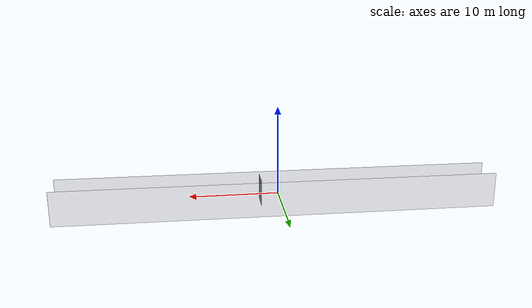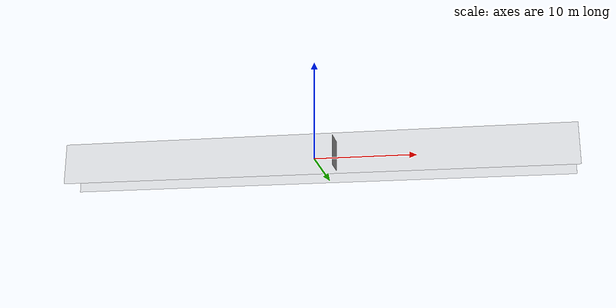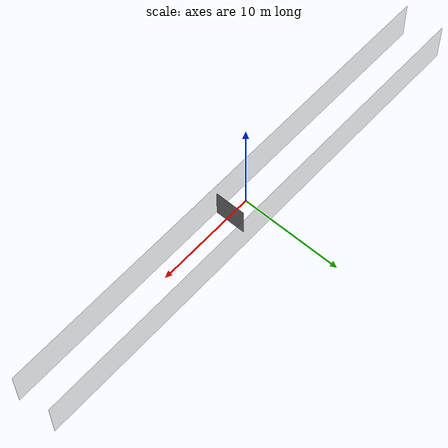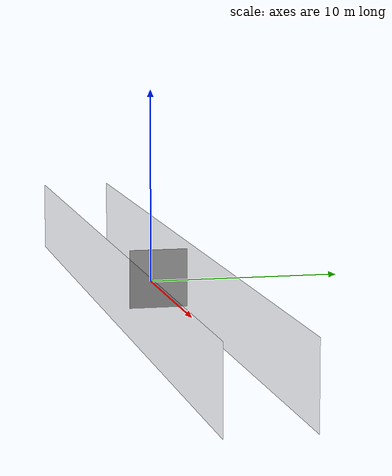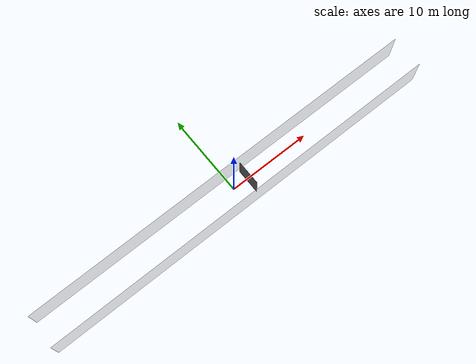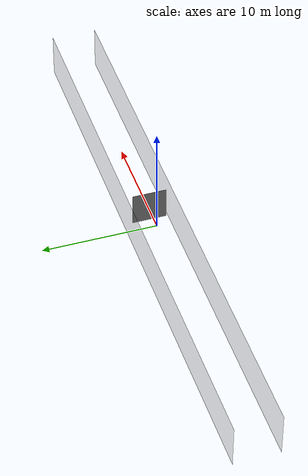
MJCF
<mujoco>
  <visual>
    <headlight ambient=".4 .4 .4" diffuse=".8 .8 .8" specular=".1 .1 .1" />
    <global offwidth="2048" offheight="1536" />
    <quality shadowsize="8192" />
    <map znear="0.00025" zfar="4.0" fogstart="0.05" fogend="1.5" />
    <rgba fog="0.0 0.0 0.0 1.0" />
  </visual>

  <asset>
    <!-- Platform surface: rubberized flat gray -->
    <texture name="platform_tex" type="2d" builtin="flat" width="64" height="64"
      rgb1=".5 .5 .5" rgb2=".45 .45 .45" />
    <material name="platform_mat" texture="platform_tex" texrepeat="2 2"
      texuniform="true" reflectance=".1" />

    <!-- White-noise background: checker pattern for visual depth cues
         (grayscale squares approximating ~1 degree visual angle) -->
    <texture name="noise_bg" type="2d" builtin="checker" width="512" height="512"
      rgb1=".85 .85 .85" rgb2=".15 .15 .15" />
    <material name="noise_bg_mat" texture="noise_bg" texrepeat="40 20"
      texuniform="true" reflectance="0" />

    <!-- Landing edge strip: dark black strip on leading edge of landing platform -->
    <material name="edge_strip_mat" rgba="0.05 0.05 0.05 1.0" reflectance="0" />
  </asset>

  <worldbody>
    <!-- Background wall with noise texture (behind landing platform, facing -x) -->
    <geom name="back_wall" type="plane" pos="2.0 0 0.5" zaxis="-1 0 0"
      size="1.5 1.5 0.01" contype="0" conaffinity="0" material="noise_bg_mat" />

    <!-- Side walls for visual reference (no collision, translucent) -->
    <geom name="wall_left" type="plane" pos="0 2 0" zaxis="0 -1 0"
      size="25 2 0.01" contype="0" conaffinity="0" rgba="0.6 0.6 0.6 0.3" />
    <geom name="wall_right" type="plane" pos="0 -2 0" zaxis="0 1 0"
      size="25 2 0.01" contype="0" conaffinity="0" rgba="0.6 0.6 0.6 0.3" />

    <!-- Take-off and landing platforms are added procedurally in Python
         (see gap_jump.py for platform geometry generation) -->

    <!-- Key light: single directional light for consistent warp + CPU rendering -->
    <light name="key_light" pos="2 1 8" dir="-0.2 -0.1 -1" diffuse="0.7 0.7 0.7"
      specular="0.3 0.3 0.3" directional="true" castshadow="true" />
  </worldbody>
</mujoco>
